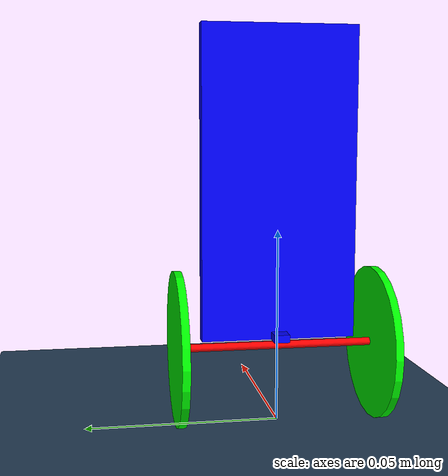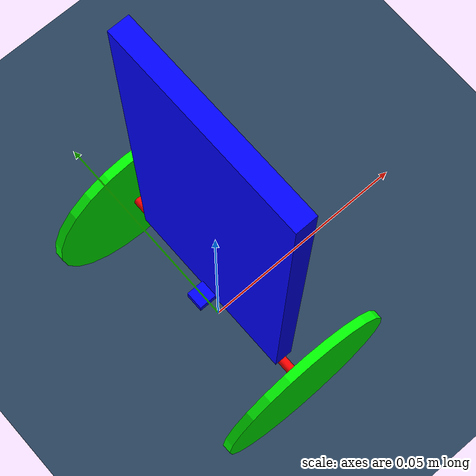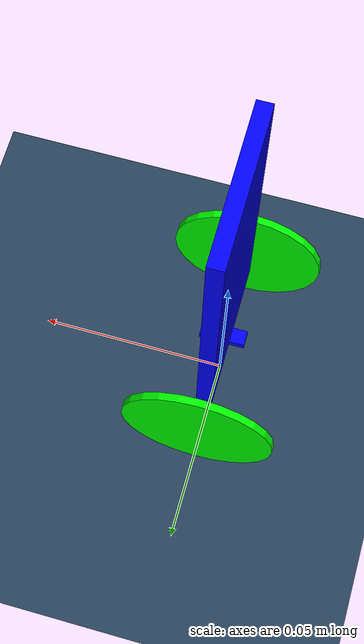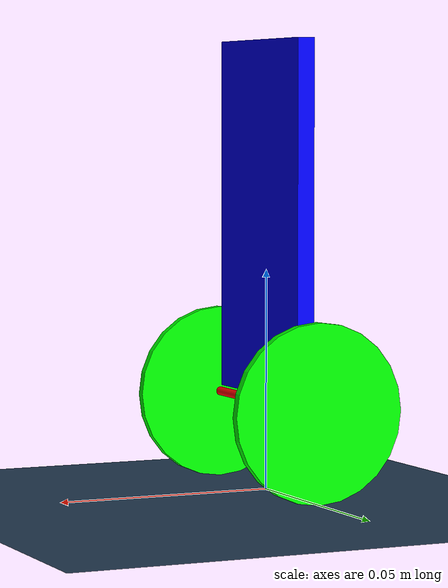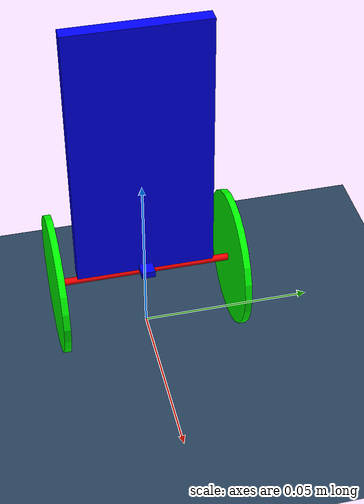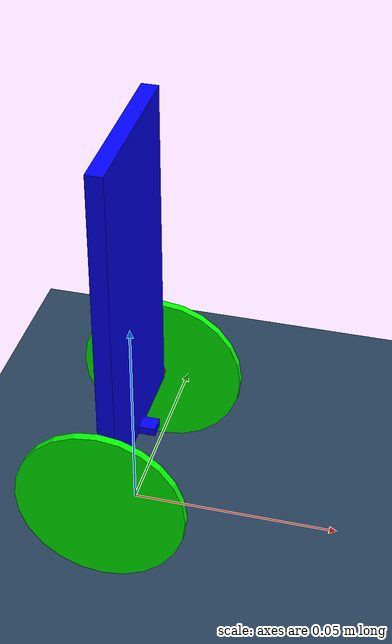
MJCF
<mujoco model="InvertedPendulum">
    <include file="./shared.xml"></include>

    <worldbody>
        <body name="pendulum" pos="0 0 0.022" childclass="body">
            <freejoint name="root" />
            <geom name="body" type="box" pos="0 0 0.04" size="0.002 0.02 0.04"
                rgba="0.0 0.0 1.0 1.0" />
            <camera name="body" pos="0 -0.3 0.04" xyaxes="1 0 0 0 0 1" mode="trackcom" />
            <body name="wheels" pos="0 0 -0.002">
                <geom name="shaft" type="cylinder" fromto="0 -0.025 0 0 0.025 0" size="0.001"
                    rgba="1.0 0.0 0.0 1.0" />
                <joint name="shaft" type="hinge" axis="0 -1 0" />
                <body name="left_wheel" pos="0 0.025 0">
                    <geom name="left_wheel" type="cylinder" fromto="0 0 0 0 0.002 0" size="0.02"
                        friction="0.1" rgba="0.0 1.0 0.0 1.0" />
                </body>
                <body name="right_wheel" pos="0 -0.025 0">
                    <geom name="right_wheel" type="cylinder" fromto="0 0 0 0 -0.002 0" size="0.02"
                        friction="0.1" rgba="0.0 1.0 0.0 1.0" />
                </body>
            </body>
            <body name="mount" pos="0 0 0.001">
                <geom name="mount" type="box" size="0.006 0.002 0.001" rgba="0.0 0.0 1.0 1.0" />
                <site name="rangefinder_f" pos="0.005 0 -0.001" euler="180 0 0"
                    rgba="0.0 1.0 0.0 0.0" />
                <site name="rangefinder_b" pos="-0.005 0 -0.001" euler="180 0 0"
                    rgba="0.0 0.0 0.0 0.0" />
            </body>
            <site name="pushed" pos="0 0 0.06" rgba="0.0 0.0 0.0 0.0" />
        </body>
    </worldbody>

    <actuator>
        <motor name="shaft" joint="shaft" gear="10" />
        <motor name="push" site="pushed" gear="0.1 0 0 0 0 0" />
    </actuator>

    <sensor>
        <jointpos name="encoder" joint="shaft" />
        <rangefinder name="front" site="rangefinder_f" />
        <rangefinder name="back" site="rangefinder_b" />
    </sensor>
</mujoco>

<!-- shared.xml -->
<mujoco>
    <option timestep="0.005" />

    <asset>
        <texture type="skybox" builtin="gradient" rgb1=".3 .5 .7" rgb2="0 0 0" width="512"
            height="512" />
        <texture name="body" type="cube" builtin="flat" mark="cross" width="127" height="1278"
            rgb1="0.8 0.6 0.4" rgb2="0.8 0.6 0.4" markrgb="1 1 1" random="0.01" />
        <material name="body" texture="body" texuniform="true" rgba="0.8 0.6 .4 1" />
        <texture name="grid" type="2d" builtin="checker" width="512" height="512" rgb1=".1 .2 .3"
            rgb2=".2 .3 .4" />
        <material name="grid" texture="grid" texrepeat="1 1" texuniform="true" reflectance=".2" />
    </asset>

    <default>
        <motor ctrlrange="-1 1" ctrllimited="true" />
        <default class="body">
            <geom condim="1" friction=".7" solimp=".9 .99 .003" solref=".015 1" material="body" />
            <joint damping=".02" stiffness=".1" armature=".01" solimplimit="0 .99 .01" />
        </default>
    </default>

    <visual>
        <map force="0.1" zfar="30" />
        <rgba haze="0.15 0.25 0.35 1" />
        <quality shadowsize="4096" />
        <global offwidth="800" offheight="800" />
    </visual>

    <worldbody>
        <geom name="floor" size="0 0 .05" type="plane" material="grid" condim="3" />
        <light name="worldlight" directional="true" ambient="0.2 0.2 0.2" diffuse="0.8 0.8 0.8"
            specular="0.3 0.3 0.3" castshadow="false" pos="0 0 4" dir="0 0 -90"></light>
    </worldbody>
</mujoco>
